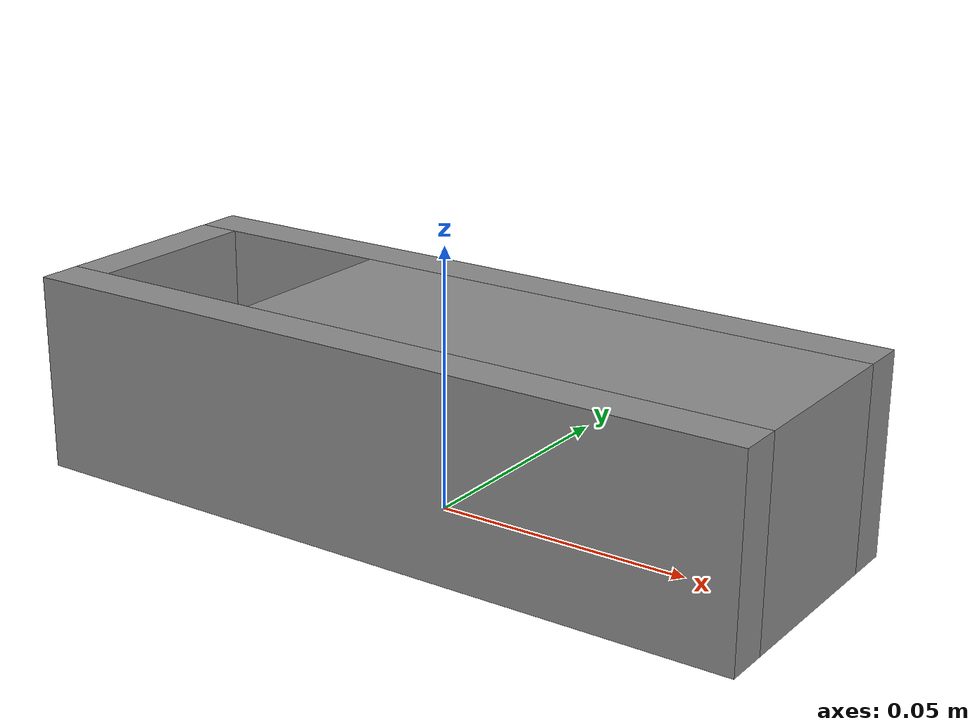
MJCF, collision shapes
<mujoco model="play2perfect_beam_fixture">
  <asset>
    <mesh name="fixture_visual" file="meshes/2ab25bf2866adc6fefc6.obj" />
  </asset>
  <worldbody>
    <body>
      <body name="object">
        <geom name="side_pos_y" type="box" pos="0 0.022338 0.01905" size="0.073125 0.0043325 0.01905" group="0" rgba="0.55 0.55 0.55 1" friction="0.5 0.001 0.00001" />
        <geom name="side_neg_y" type="box" pos="0 -0.022337 0.01905" size="0.073125 0.0043325 0.01905" group="0" rgba="0.55 0.55 0.55 1" friction="0.5 0.001 0.00001" />
        <geom name="left_end" type="box" pos="-0.068984 0 0.01905" size="0.004141 0.018005 0.01905" group="0" rgba="0.55 0.55 0.55 1" friction="0.5 0.001 0.00001" />
        <geom name="right_bulk" type="box" pos="0.021395 0 0.01905" size="0.0517295 0.018005 0.01905" group="0" rgba="0.55 0.55 0.55 1" friction="0.5 0.001 0.00001" />
        <geom name="side_pos_y_visual" type="box" pos="0 0.022338 0.01905" size="0.073125 0.0043325 0.01905" group="1" contype="0" conaffinity="0" mass="1e-8" rgba="0.28 0.55 0.82 1" />
        <geom name="side_neg_y_visual" type="box" pos="0 -0.022337 0.01905" size="0.073125 0.0043325 0.01905" group="1" contype="0" conaffinity="0" mass="1e-8" rgba="0.28 0.55 0.82 1" />
        <geom name="left_end_visual" type="box" pos="-0.068984 0 0.01905" size="0.004141 0.018005 0.01905" group="1" contype="0" conaffinity="0" mass="1e-8" rgba="0.28 0.55 0.82 1" />
        <geom name="right_bulk_visual" type="box" pos="0.021395 0 0.01905" size="0.0517295 0.018005 0.01905" group="1" contype="0" conaffinity="0" mass="1e-8" rgba="0.28 0.55 0.82 1" />
        <geom name="fixture_visual" type="mesh" mesh="fixture_visual" group="1" contype="0" conaffinity="0" mass="1e-8" rgba="0.65 0.65 0.68 1" />
        <site name="insertion_site" pos="-0.047625 0 0.0381" size="0.002" rgba="0 1 0 0" />
      </body>
      <site name="bottom_site" pos="0 0 0" size="0.002" rgba="0 0 0 0" />
      <site name="top_site" pos="0 0 0.0381" size="0.002" rgba="0 0 0 0" />
      <site name="horizontal_radius_site" pos="0.0732 0.0267 0" size="0.002" rgba="0 0 0 0" />
    </body>
  </worldbody>
</mujoco>
